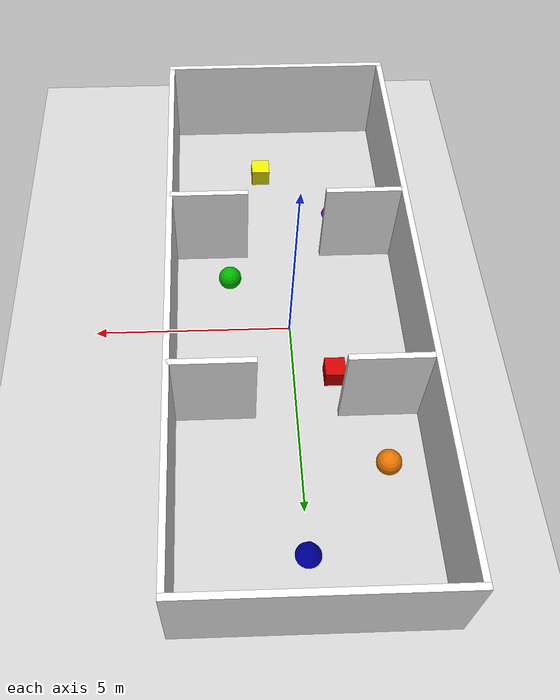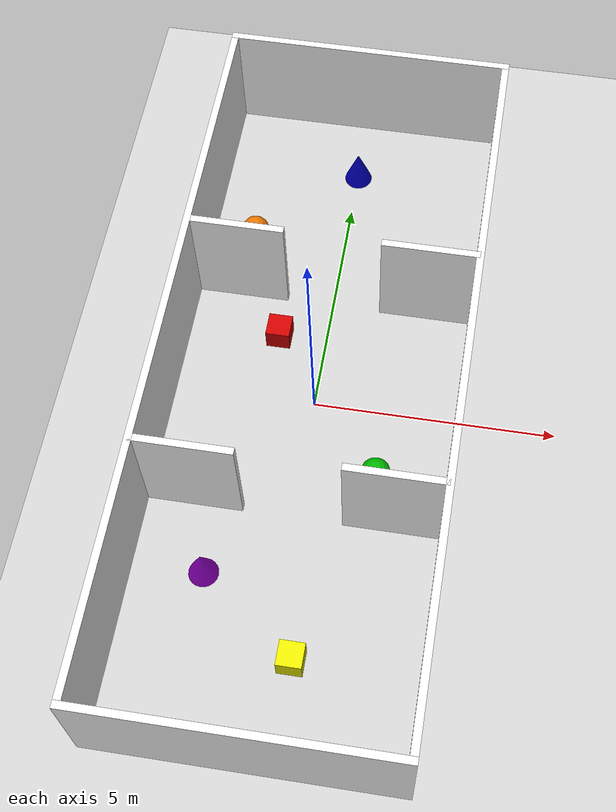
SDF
<?xml version="1.0" ?>
<sdf version='1.6'>
  <world name='custom_world'>

    <scene>
      <shadows>0</shadows>
    </scene>

    <gui fullscreen='0'>
      <camera name='user_camera'>
        <pose frame=''>0.319654 -0.235002 9.29441 0 1.5138 0.009599</pose>
        <view_controller>orbit</view_controller>
        <projection_type>perspective</projection_type>
      </camera>
    </gui>

    <physics type="ode">
      <real_time_update_rate>1000.0</real_time_update_rate>
      <max_step_size>0.001</max_step_size>
      <real_time_factor>1</real_time_factor>
      <ode>
        <solver>
          <type>quick</type>
          <iters>150</iters>
          <precon_iters>0</precon_iters>
          <sor>1.400000</sor>
          <use_dynamic_moi_rescaling>1</use_dynamic_moi_rescaling>
        </solver>
        <constraints>
          <cfm>0.00001</cfm>
          <erp>0.2</erp>
          <contact_max_correcting_vel>2000.000000</contact_max_correcting_vel>
          <contact_surface_layer>0.01000</contact_surface_layer>
        </constraints>
      </ode>
    </physics>

    <plugin name='gz::sim::systems::Physics' filename='gz-sim-physics-system'/>
    <plugin name='gz::sim::systems::UserCommands' filename='gz-sim-user-commands-system'/>
    <plugin name='gz::sim::systems::SceneBroadcaster' filename='gz-sim-scene-broadcaster-system'/>
    <plugin name='gz::sim::systems::Contact' filename='gz-sim-contact-system'/>
    <plugin name='gz::sim::systems::Sensors' filename='gz-sim-sensors-system'/>
    <plugin name='gz::sim::systems::Imu' filename='gz-sim-imu-system'/>

    <include>
      <uri>https://fuel.gazebosim.org/1.0/OpenRobotics/models/Ground Plane</uri>
    </include>

    <include>
      <uri>https://fuel.gazebosim.org/1.0/OpenRobotics/models/Sun</uri>
    </include>

    <model name='world_model'>
      <pose frame=''>0 0 0 0 0 1.5708</pose>

      <link name='wall_1'>
        <pose frame=''>0 -3 0 0 0 3.14159</pose>
        <self_collide>0</self_collide>
        <kinematic>0</kinematic>
        <visual name='wall_1_visual'>
          <pose frame=''>0 0 1.25 0 0 0</pose>
          <geometry>
            <box>
              <size>15 0.15 2.5</size>
            </box>
          </geometry>
          <material>
            <pbr>
              <metal>
                <albedo_map>textures/bricks.png</albedo_map>
              </metal>
            </pbr>
            <ambient>1 1 1 1</ambient>
            <diffuse>1 1 1 1</diffuse>
            <specular>0.2 0.2 0.2 1</specular>
            <emissive>0 0 0 1</emissive>
          </material>
          <cast_shadows>0</cast_shadows>
          <transparency>0</transparency>
        </visual>
        <collision name='wall_1_collision'>
          <laser_retro>0</laser_retro>
          <max_contacts>10</max_contacts>
          <pose frame=''>0 0 1.25 0 0 0</pose>
          <geometry>
            <box>
              <size>15 0.15 2.5</size>
            </box>
          </geometry>
          <surface>
            <friction>
              <ode>
                <mu>1</mu>
                <mu2>1</mu2>
                <fdir1>0 0 0</fdir1>
                <slip1>0</slip1>
                <slip2>0</slip2>
              </ode>
              <torsional>
                <coefficient>1</coefficient>
                <patch_radius>0</patch_radius>
                <surface_radius>0</surface_radius>
                <use_patch_radius>1</use_patch_radius>
                <ode>
                  <slip>0</slip>
                </ode>
              </torsional>
            </friction>
            <bounce>
              <restitution_coefficient>0</restitution_coefficient>
              <threshold>1e+06</threshold>
            </bounce>
            <contact>
              <collide_without_contact>0</collide_without_contact>
              <collide_without_contact_bitmask>1</collide_without_contact_bitmask>
              <collide_bitmask>1</collide_bitmask>
              <ode>
                <soft_cfm>0</soft_cfm>
                <soft_erp>0.2</soft_erp>
                <kp>1e+13</kp>
                <kd>1</kd>
                <max_vel>0.01</max_vel>
                <min_depth>0</min_depth>
              </ode>
              <bullet>
                <split_impulse>1</split_impulse>
                <split_impulse_penetration_threshold>-0.01</split_impulse_penetration_threshold>
                <soft_cfm>0</soft_cfm>
                <soft_erp>0.2</soft_erp>
                <kp>1e+13</kp>
                <kd>1</kd>
              </bullet>
            </contact>
          </surface>
        </collision>
      </link>

      <link name='wall_2'>
        <pose frame=''>-7.575 0 0 0 0 1.5708</pose>
        <self_collide>0</self_collide>
        <kinematic>0</kinematic>
        <visual name='wall_2_visual'>
          <pose frame=''>0 0 1.25 0 0 0</pose>
          <geometry>
            <box>
              <size>6.15 0.15 2.5</size>
            </box>
          </geometry>
          <material>
            <pbr>
              <metal>
                <albedo_map>textures/bricks.png</albedo_map>
              </metal>
            </pbr>
            <ambient>1 1 1 1</ambient>
            <diffuse>1 1 1 1</diffuse>
            <specular>0.2 0.2 0.2 1</specular>
            <emissive>0 0 0 1</emissive>
          </material>
          <cast_shadows>0</cast_shadows>
          <transparency>0</transparency>
        </visual>
        <collision name='wall_2_collision'>
          <laser_retro>0</laser_retro>
          <max_contacts>10</max_contacts>
          <pose frame=''>0 0 1.25 0 0 0</pose>
          <geometry>
            <box>
              <size>6.15 0.15 2.5</size>
            </box>
          </geometry>
          <surface>
            <friction>
              <ode>
                <mu>1</mu>
                <mu2>1</mu2>
                <fdir1>0 0 0</fdir1>
                <slip1>0</slip1>
                <slip2>0</slip2>
              </ode>
              <torsional>
                <coefficient>1</coefficient>
                <patch_radius>0</patch_radius>
                <surface_radius>0</surface_radius>
                <use_patch_radius>1</use_patch_radius>
                <ode>
                  <slip>0</slip>
                </ode>
              </torsional>
            </friction>
            <bounce>
              <restitution_coefficient>0</restitution_coefficient>
              <threshold>1e+06</threshold>
            </bounce>
            <contact>
              <collide_without_contact>0</collide_without_contact>
              <collide_without_contact_bitmask>1</collide_without_contact_bitmask>
              <collide_bitmask>1</collide_bitmask>
              <ode>
                <soft_cfm>0</soft_cfm>
                <soft_erp>0.2</soft_erp>
                <kp>1e+13</kp>
                <kd>1</kd>
                <max_vel>0.01</max_vel>
                <min_depth>0</min_depth>
              </ode>
              <bullet>
                <split_impulse>1</split_impulse>
                <split_impulse_penetration_threshold>-0.01</split_impulse_penetration_threshold>
                <soft_cfm>0</soft_cfm>
                <soft_erp>0.2</soft_erp>
                <kp>1e+13</kp>
                <kd>1</kd>
              </bullet>
            </contact>
          </surface>
        </collision>
      </link>

      <link name='wall_3'>
        <pose frame=''>0 3 0 0 0 3.14159</pose>
        <self_collide>0</self_collide>
        <kinematic>0</kinematic>
        <visual name='wall_3_visual'>
          <pose frame=''>0 0 1.25 0 0 0</pose>
          <geometry>
            <box>
              <size>15 0.15 2.5</size>
            </box>
          </geometry>
          <material>
            <pbr>
              <metal>
                <albedo_map>textures/bricks.png</albedo_map>
              </metal>
            </pbr>
            <ambient>1 1 1 1</ambient>
            <diffuse>1 1 1 1</diffuse>
            <specular>0.2 0.2 0.2 1</specular>
            <emissive>0 0 0 1</emissive>
          </material>
          <cast_shadows>0</cast_shadows>
          <transparency>0</transparency>
        </visual>
        <collision name='wall_3_collision'>
          <laser_retro>0</laser_retro>
          <max_contacts>10</max_contacts>
          <pose frame=''>0 0 1.25 0 0 0</pose>
          <geometry>
            <box>
              <size>15 0.15 2.5</size>
            </box>
          </geometry>
          <surface>
            <friction>
              <ode>
                <mu>1</mu>
                <mu2>1</mu2>
                <fdir1>0 0 0</fdir1>
                <slip1>0</slip1>
                <slip2>0</slip2>
              </ode>
              <torsional>
                <coefficient>1</coefficient>
                <patch_radius>0</patch_radius>
                <surface_radius>0</surface_radius>
                <use_patch_radius>1</use_patch_radius>
                <ode>
                  <slip>0</slip>
                </ode>
              </torsional>
            </friction>
            <bounce>
              <restitution_coefficient>0</restitution_coefficient>
              <threshold>1e+06</threshold>
            </bounce>
            <contact>
              <collide_without_contact>0</collide_without_contact>
              <collide_without_contact_bitmask>1</collide_without_contact_bitmask>
              <collide_bitmask>1</collide_bitmask>
              <ode>
                <soft_cfm>0</soft_cfm>
                <soft_erp>0.2</soft_erp>
                <kp>1e+13</kp>
                <kd>1</kd>
                <max_vel>0.01</max_vel>
                <min_depth>0</min_depth>
              </ode>
              <bullet>
                <split_impulse>1</split_impulse>
                <split_impulse_penetration_threshold>-0.01</split_impulse_penetration_threshold>
                <soft_cfm>0</soft_cfm>
                <soft_erp>0.2</soft_erp>
                <kp>1e+13</kp>
                <kd>1</kd>
              </bullet>
            </contact>
          </surface>
        </collision>
      </link>

      <link name='wall_4'>
        <pose frame=''>7.575 0 0 0 0 1.5708</pose>
        <self_collide>0</self_collide>
        <kinematic>0</kinematic>
        <visual name='wall_4_visual'>
          <pose frame=''>0 0 1.25 0 0 0</pose>
          <geometry>
            <box>
              <size>6.15 0.15 2.5</size>
            </box>
          </geometry>
          <material>
            <pbr>
              <metal>
                <albedo_map>textures/bricks.png</albedo_map>
              </metal>
            </pbr>
            <ambient>1 1 1 1</ambient>
            <diffuse>1 1 1 1</diffuse>
            <specular>0.2 0.2 0.2 1</specular>
            <emissive>0 0 0 1</emissive>
          </material>
          <cast_shadows>0</cast_shadows>
          <transparency>0</transparency>
        </visual>
        <collision name='wall_4_collision'>
          <laser_retro>0</laser_retro>
          <max_contacts>10</max_contacts>
          <pose frame=''>0 0 1.25 0 0 0</pose>
          <geometry>
            <box>
              <size>6.15 0.15 2.5</size>
            </box>
          </geometry>
          <surface>
            <friction>
              <ode>
                <mu>1</mu>
                <mu2>1</mu2>
                <fdir1>0 0 0</fdir1>
                <slip1>0</slip1>
                <slip2>0</slip2>
              </ode>
              <torsional>
                <coefficient>1</coefficient>
                <patch_radius>0</patch_radius>
                <surface_radius>0</surface_radius>
                <use_patch_radius>1</use_patch_radius>
                <ode>
                  <slip>0</slip>
                </ode>
              </torsional>
            </friction>
            <bounce>
              <restitution_coefficient>0</restitution_coefficient>
              <threshold>1e+06</threshold>
            </bounce>
            <contact>
              <collide_without_contact>0</collide_without_contact>
              <collide_without_contact_bitmask>1</collide_without_contact_bitmask>
              <collide_bitmask>1</collide_bitmask>
              <ode>
                <soft_cfm>0</soft_cfm>
                <soft_erp>0.2</soft_erp>
                <kp>1e+13</kp>
                <kd>1</kd>
                <max_vel>0.01</max_vel>
                <min_depth>0</min_depth>
              </ode>
              <bullet>
                <split_impulse>1</split_impulse>
                <split_impulse_penetration_threshold>-0.01</split_impulse_penetration_threshold>
                <soft_cfm>0</soft_cfm>
                <soft_erp>0.2</soft_erp>
                <kp>1e+13</kp>
                <kd>1</kd>
              </bullet>
            </contact>
          </surface>
        </collision>
      </link>

      <link name='wall_5'>
        <pose frame=''>2.525 0 0 0 0 1.5708</pose>
        <self_collide>0</self_collide>
        <kinematic>0</kinematic>
        <visual name='wall_5_visual_1'>
          <pose frame=''>2 0 1.25 0 0 0</pose>
          <geometry>
            <box>
              <size>2 0.15 2.5</size>
            </box>
          </geometry>
          <material>
            <pbr>
              <metal>
                <albedo_map>textures/bricks.png</albedo_map>
              </metal>
            </pbr>
            <ambient>1 1 1 1</ambient>
            <diffuse>1 1 1 1</diffuse>
            <specular>0.2 0.2 0.2 1</specular>
            <emissive>0 0 0 1</emissive>
          </material>
          <cast_shadows>0</cast_shadows>
          <transparency>0</transparency>
        </visual>
        <visual name='wall_5_visual_2'>
          <pose frame=''>-2 0 1.25 0 0 0</pose>
          <geometry>
            <box>
              <size>2 0.15 2.5</size>
            </box>
          </geometry>
          <material>
            <pbr>
              <metal>
                <albedo_map>textures/bricks.png</albedo_map>
              </metal>
            </pbr>
            <ambient>1 1 1 1</ambient>
            <diffuse>1 1 1 1</diffuse>
            <specular>0.2 0.2 0.2 1</specular>
            <emissive>0 0 0 1</emissive>
          </material>
          <cast_shadows>0</cast_shadows>
          <transparency>0</transparency>
        </visual>
        <collision name='wall_5_collision_1'>
          <laser_retro>0</laser_retro>
          <max_contacts>10</max_contacts>
          <pose frame=''>2 0 1.25 0 0 0</pose>
          <geometry>
            <box>
              <size>2 0.15 2.5</size>
            </box>
          </geometry>
          <surface>
            <friction>
              <ode>
                <mu>1</mu>
                <mu2>1</mu2>
                <fdir1>0 0 0</fdir1>
                <slip1>0</slip1>
                <slip2>0</slip2>
              </ode>
              <torsional>
                <coefficient>1</coefficient>
                <patch_radius>0</patch_radius>
                <surface_radius>0</surface_radius>
                <use_patch_radius>1</use_patch_radius>
                <ode>
                  <slip>0</slip>
                </ode>
              </torsional>
            </friction>
            <bounce>
              <restitution_coefficient>0</restitution_coefficient>
              <threshold>1e+06</threshold>
            </bounce>
            <contact>
              <collide_without_contact>0</collide_without_contact>
              <collide_without_contact_bitmask>1</collide_without_contact_bitmask>
              <collide_bitmask>1</collide_bitmask>
              <ode>
                <soft_cfm>0</soft_cfm>
                <soft_erp>0.2</soft_erp>
                <kp>1e+13</kp>
                <kd>1</kd>
                <max_vel>0.01</max_vel>
                <min_depth>0</min_depth>
              </ode>
              <bullet>
                <split_impulse>1</split_impulse>
                <split_impulse_penetration_threshold>-0.01</split_impulse_penetration_threshold>
                <soft_cfm>0</soft_cfm>
                <soft_erp>0.2</soft_erp>
                <kp>1e+13</kp>
                <kd>1</kd>
              </bullet>
            </contact>
          </surface>
        </collision>
        <collision name='wall_5_collision_2'>
          <laser_retro>0</laser_retro>
          <max_contacts>10</max_contacts>
          <pose frame=''>-2 0 1.25 0 0 0</pose>
          <geometry>
            <box>
              <size>2 0.15 2.5</size>
            </box>
          </geometry>
          <surface>
            <friction>
              <ode>
                <mu>1</mu>
                <mu2>1</mu2>
                <fdir1>0 0 0</fdir1>
                <slip1>0</slip1>
                <slip2>0</slip2>
              </ode>
              <torsional>
                <coefficient>1</coefficient>
                <patch_radius>0</patch_radius>
                <surface_radius>0</surface_radius>
                <use_patch_radius>1</use_patch_radius>
                <ode>
                  <slip>0</slip>
                </ode>
              </torsional>
            </friction>
            <bounce>
              <restitution_coefficient>0</restitution_coefficient>
              <threshold>1e+06</threshold>
            </bounce>
            <contact>
              <collide_without_contact>0</collide_without_contact>
              <collide_without_contact_bitmask>1</collide_without_contact_bitmask>
              <collide_bitmask>1</collide_bitmask>
              <ode>
                <soft_cfm>0</soft_cfm>
                <soft_erp>0.2</soft_erp>
                <kp>1e+13</kp>
                <kd>1</kd>
                <max_vel>0.01</max_vel>
                <min_depth>0</min_depth>
              </ode>
              <bullet>
                <split_impulse>1</split_impulse>
                <split_impulse_penetration_threshold>-0.01</split_impulse_penetration_threshold>
                <soft_cfm>0</soft_cfm>
                <soft_erp>0.2</soft_erp>
                <kp>1e+13</kp>
                <kd>1</kd>
              </bullet>
            </contact>
          </surface>
        </collision>
      </link>

      <link name='wall_6'>
        <pose frame=''>-2.525 0 0 0 0 1.5708</pose>
        <self_collide>0</self_collide>
        <kinematic>0</kinematic>
        <visual name='wall_6_visual_1'>
          <pose frame=''>2 0 1.25 0 0 0</pose>
          <geometry>
            <box>
              <size>2 0.15 2.5</size>
            </box>
          </geometry>
          <material>
            <pbr>
              <metal>
                <albedo_map>textures/bricks.png</albedo_map>
              </metal>
            </pbr>
            <ambient>1 1 1 1</ambient>
            <diffuse>1 1 1 1</diffuse>
            <specular>0.2 0.2 0.2 1</specular>
            <emissive>0 0 0 1</emissive>
          </material>
          <cast_shadows>0</cast_shadows>
          <transparency>0</transparency>
        </visual>
        <visual name='wall_6_visual_2'>
          <pose frame=''>-2 0 1.25 0 0 0</pose>
          <geometry>
            <box>
              <size>2 0.15 2.5</size>
            </box>
          </geometry>
          <material>
            <pbr>
              <metal>
                <albedo_map>textures/bricks.png</albedo_map>
              </metal>
            </pbr>
            <ambient>1 1 1 1</ambient>
            <diffuse>1 1 1 1</diffuse>
            <specular>0.2 0.2 0.2 1</specular>
            <emissive>0 0 0 1</emissive>
          </material>
          <cast_shadows>0</cast_shadows>
          <transparency>0</transparency>
        </visual>
        <collision name='wall_6_collision_1'>
          <laser_retro>0</laser_retro>
          <max_contacts>10</max_contacts>
          <pose frame=''>2 0 1.25 0 0 0</pose>
          <geometry>
            <box>
              <size>2 0.15 2.5</size>
            </box>
          </geometry>
          <surface>
            <friction>
              <ode>
                <mu>1</mu>
                <mu2>1</mu2>
                <fdir1>0 0 0</fdir1>
                <slip1>0</slip1>
                <slip2>0</slip2>
              </ode>
              <torsional>
                <coefficient>1</coefficient>
                <patch_radius>0</patch_radius>
                <surface_radius>0</surface_radius>
                <use_patch_radius>1</use_patch_radius>
                <ode>
                  <slip>0</slip>
                </ode>
              </torsional>
            </friction>
            <bounce>
              <restitution_coefficient>0</restitution_coefficient>
              <threshold>1e+06</threshold>
            </bounce>
            <contact>
              <collide_without_contact>0</collide_without_contact>
              <collide_without_contact_bitmask>1</collide_without_contact_bitmask>
              <collide_bitmask>1</collide_bitmask>
              <ode>
                <soft_cfm>0</soft_cfm>
                <soft_erp>0.2</soft_erp>
                <kp>1e+13</kp>
                <kd>1</kd>
                <max_vel>0.01</max_vel>
                <min_depth>0</min_depth>
              </ode>
              <bullet>
                <split_impulse>1</split_impulse>
                <split_impulse_penetration_threshold>-0.01</split_impulse_penetration_threshold>
                <soft_cfm>0</soft_cfm>
                <soft_erp>0.2</soft_erp>
                <kp>1e+13</kp>
                <kd>1</kd>
              </bullet>
            </contact>
          </surface>
        </collision>
        <collision name='wall_6_collision_2'>
          <laser_retro>0</laser_retro>
          <max_contacts>10</max_contacts>
          <pose frame=''>-2 0 1.25 0 0 0</pose>
          <geometry>
            <box>
              <size>2 0.15 2.5</size>
            </box>
          </geometry>
          <surface>
            <friction>
              <ode>
                <mu>1</mu>
                <mu2>1</mu2>
                <fdir1>0 0 0</fdir1>
                <slip1>0</slip1>
                <slip2>0</slip2>
              </ode>
              <torsional>
                <coefficient>1</coefficient>
                <patch_radius>0</patch_radius>
                <surface_radius>0</surface_radius>
                <use_patch_radius>1</use_patch_radius>
                <ode>
                  <slip>0</slip>
                </ode>
              </torsional>
            </friction>
            <bounce>
              <restitution_coefficient>0</restitution_coefficient>
              <threshold>1e+06</threshold>
            </bounce>
            <contact>
              <collide_without_contact>0</collide_without_contact>
              <collide_without_contact_bitmask>1</collide_without_contact_bitmask>
              <collide_bitmask>1</collide_bitmask>
              <ode>
                <soft_cfm>0</soft_cfm>
                <soft_erp>0.2</soft_erp>
                <kp>1e+13</kp>
                <kd>1</kd>
                <max_vel>0.01</max_vel>
                <min_depth>0</min_depth>
              </ode>
              <bullet>
                <split_impulse>1</split_impulse>
                <split_impulse_penetration_threshold>-0.01</split_impulse_penetration_threshold>
                <soft_cfm>0</soft_cfm>
                <soft_erp>0.2</soft_erp>
                <kp>1e+13</kp>
                <kd>1</kd>
              </bullet>
            </contact>
          </surface>
        </collision>
      </link>

      <model name='box1'>
        <pose>1.5 1 0.25 0 0 0</pose>
        <link name='box_link'>
          <inertial>
            <inertia>
              <ixx>0.16666</ixx>
              <ixy>0</ixy>
              <ixz>0</ixz>
              <iyy>0.16666</iyy>
              <iyz>0</iyz>
              <izz>0.16666</izz>
            </inertia>
            <mass>1</mass>
            <pose>0 0 0 0 0 0</pose>
          </inertial>
          <collision name='box_collision'>
            <geometry>
              <box>
                <size>0.5 0.5 0.5</size>
              </box>
            </geometry>
            <surface>
              <friction>
                <ode/>
              </friction>
              <bounce/>
              <contact/>
            </surface>
          </collision>
          <visual name='box_visual'>
            <geometry>
              <box>
                <size>0.5 0.5 0.5</size>
              </box>
            </geometry>
            <material>
              <ambient>0.3 0 0 1</ambient>
              <diffuse>0.8 0 0 1</diffuse>
              <specular>1 0.5 0.5 1</specular>
            </material>
          </visual>
          <pose>0 0 0 0 0 0</pose>
          <enable_wind>false</enable_wind>
        </link>
        <static>false</static>
        <self_collide>false</self_collide>
      </model>

      <model name='box2'>
        <pose>-5.5 -0.5 0.25 0 0 0</pose>
        <link name='box_link'>
          <inertial>
            <inertia>
              <ixx>0.16666</ixx>
              <ixy>0</ixy>
              <ixz>0</ixz>
              <iyy>0.16666</iyy>
              <iyz>0</iyz>
              <izz>0.16666</izz>
            </inertia>
            <mass>1</mass>
            <pose>0 0 0 0 0 0</pose>
          </inertial>
          <collision name='box_collision'>
            <geometry>
              <box>
                <size>0.5 0.5 0.5</size>
              </box>
            </geometry>
            <surface>
              <friction>
                <ode/>
              </friction>
              <bounce/>
              <contact/>
            </surface>
          </collision>
          <visual name='box_visual'>
            <geometry>
              <box>
                <size>0.5 0.5 0.5</size>
              </box>
            </geometry>
            <material>
              <ambient>0.3 0.3 0 1</ambient>
              <diffuse>0.9 0.9 0 1</diffuse>
              <specular>1 1 0.5 1</specular>
            </material>
          </visual>
          <pose>0 0 0 0 0 0</pose>
          <enable_wind>false</enable_wind>
        </link>
        <static>false</static>
        <self_collide>false</self_collide>
      </model>

      <model name='sphere1'>
        <pose>4 2 0.3 0 0 0</pose>
        <link name='sphere_link'>
          <inertial>
            <inertia>
              <ixx>0.10000000000000001</ixx>
              <ixy>0</ixy>
              <ixz>0</ixz>
              <iyy>0.10000000000000001</iyy>
              <iyz>0</iyz>
              <izz>0.10000000000000001</izz>
            </inertia>
            <mass>1</mass>
            <pose>0 0 0 0 0 0</pose>
          </inertial>
          <collision name='sphere_collision'>
            <geometry>
              <sphere>
                <radius>0.3</radius>
              </sphere>
            </geometry>
            <surface>
              <friction>
                <ode/>
              </friction>
              <bounce/>
              <contact/>
            </surface>
          </collision>
          <visual name='sphere_visual'>
            <geometry>
              <sphere>
                <radius>0.3</radius>
              </sphere>
            </geometry>
            <material>
              <ambient>0.3 0.15 0 1</ambient>
              <diffuse>0.9 0.45 0 1</diffuse>
              <specular>1 0.7 0.3 1</specular>
            </material>
          </visual>
          <pose>0 0 0 0 0 0</pose>
          <enable_wind>false</enable_wind>
        </link>
        <static>false</static>
        <self_collide>false</self_collide>
      </model>

      <model name='sphere2'>
        <pose>-1.5 -1.5 0.3 0 0 0</pose>
        <link name='sphere_link'>
          <inertial>
            <inertia>
              <ixx>0.10000000000000001</ixx>
              <ixy>0</ixy>
              <ixz>0</ixz>
              <iyy>0.10000000000000001</iyy>
              <iyz>0</iyz>
              <izz>0.10000000000000001</izz>
            </inertia>
            <mass>1</mass>
            <pose>0 0 0 0 0 0</pose>
          </inertial>
          <collision name='sphere_collision'>
            <geometry>
              <sphere>
                <radius>0.3</radius>
              </sphere>
            </geometry>
            <surface>
              <friction>
                <ode/>
              </friction>
              <bounce/>
              <contact/>
            </surface>
          </collision>
          <visual name='sphere_visual'>
            <geometry>
              <sphere>
                <radius>0.3</radius>
              </sphere>
            </geometry>
            <material>
              <ambient>0 0.3 0 1</ambient>
              <diffuse>0 0.7 0 1</diffuse>
              <specular>0.5 1 0.5 1</specular>
            </material>
          </visual>
          <pose>0 0 0 0 0 0</pose>
          <enable_wind>false</enable_wind>
        </link>
        <static>false</static>
        <self_collide>false</self_collide>
      </model>

      <model name='cone1'>
        <pose>6 0 0.4 0 0 0</pose>
        <link name='cone_link'>
          <inertial>
            <inertia>
              <ixx>0.074999999999999997</ixx>
              <ixy>0</ixy>
              <ixz>0</ixz>
              <iyy>0.074999999999999997</iyy>
              <iyz>0</iyz>
              <izz>0.074999999999999997</izz>
            </inertia>
            <mass>1</mass>
            <pose>0 0 0 0 0 0</pose>
          </inertial>
          <collision name='cone_collision'>
            <geometry>
              <cone>
                <radius>0.3</radius>
                <length>0.8</length>
              </cone>
            </geometry>
            <surface>
              <friction>
                <ode/>
              </friction>
              <bounce/>
              <contact/>
            </surface>
          </collision>
          <visual name='cone_visual'>
            <geometry>
              <cone>
                <radius>0.3</radius>
                <length>0.8</length>
              </cone>
            </geometry>
            <material>
              <ambient>0 0 0.3 1</ambient>
              <diffuse>0 0 0.8 1</diffuse>
              <specular>0.5 0.5 1 1</specular>
            </material>
          </visual>
          <pose>0 0 0 0 0 0</pose>
          <enable_wind>false</enable_wind>
        </link>
        <static>false</static>
        <self_collide>false</self_collide>
      </model>

      <model name='cone2'>
        <pose>-4 1.5 0.4 0 0 0</pose>
        <link name='cone_link'>
          <inertial>
            <inertia>
              <ixx>0.074999999999999997</ixx>
              <ixy>0</ixy>
              <ixz>0</ixz>
              <iyy>0.074999999999999997</iyy>
              <iyz>0</iyz>
              <izz>0.074999999999999997</izz>
            </inertia>
            <mass>1</mass>
            <pose>0 0 0 0 0 0</pose>
          </inertial>
          <collision name='cone_collision'>
            <geometry>
              <cone>
                <radius>0.3</radius>
                <length>0.8</length>
              </cone>
            </geometry>
            <surface>
              <friction>
                <ode/>
              </friction>
              <bounce/>
              <contact/>
            </surface>
          </collision>
          <visual name='cone_visual'>
            <geometry>
              <cone>
                <radius>0.3</radius>
                <length>0.8</length>
              </cone>
            </geometry>
            <material>
              <ambient>0.2 0 0.3 1</ambient>
              <diffuse>0.6 0 0.8 1</diffuse>
              <specular>0.8 0.5 1 1</specular>
            </material>
          </visual>
          <pose>0 0 0 0 0 0</pose>
          <enable_wind>false</enable_wind>
        </link>
        <static>false</static>
        <self_collide>false</self_collide>
      </model>

    </model>
  </world>
</sdf>
